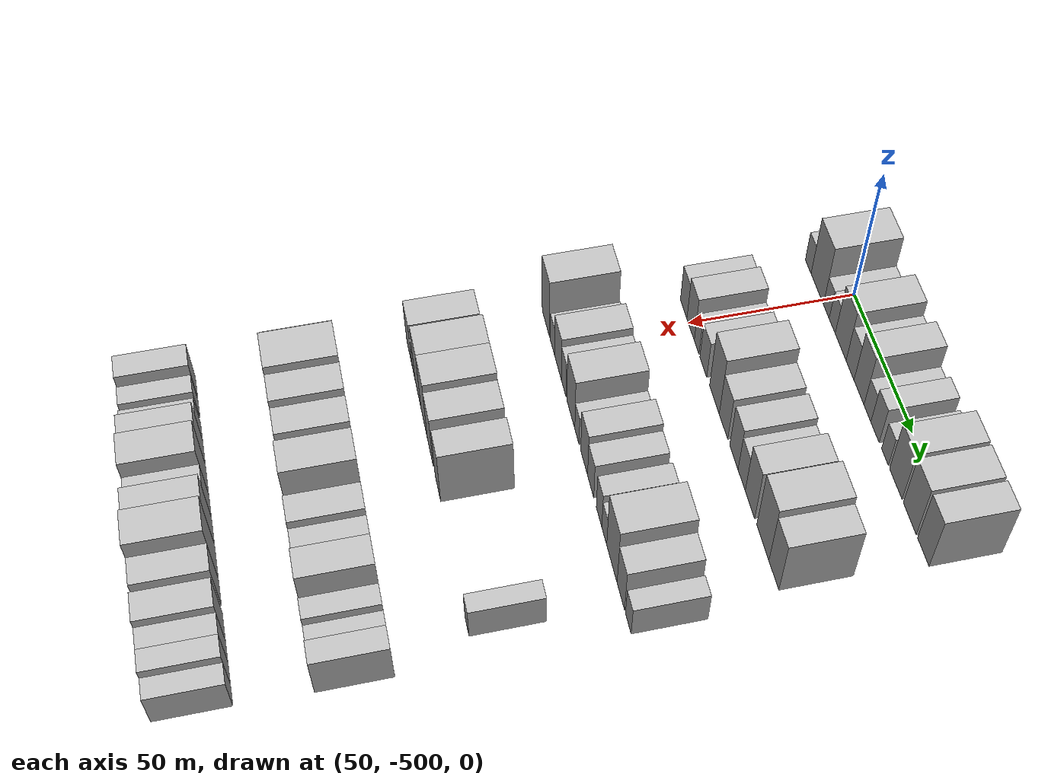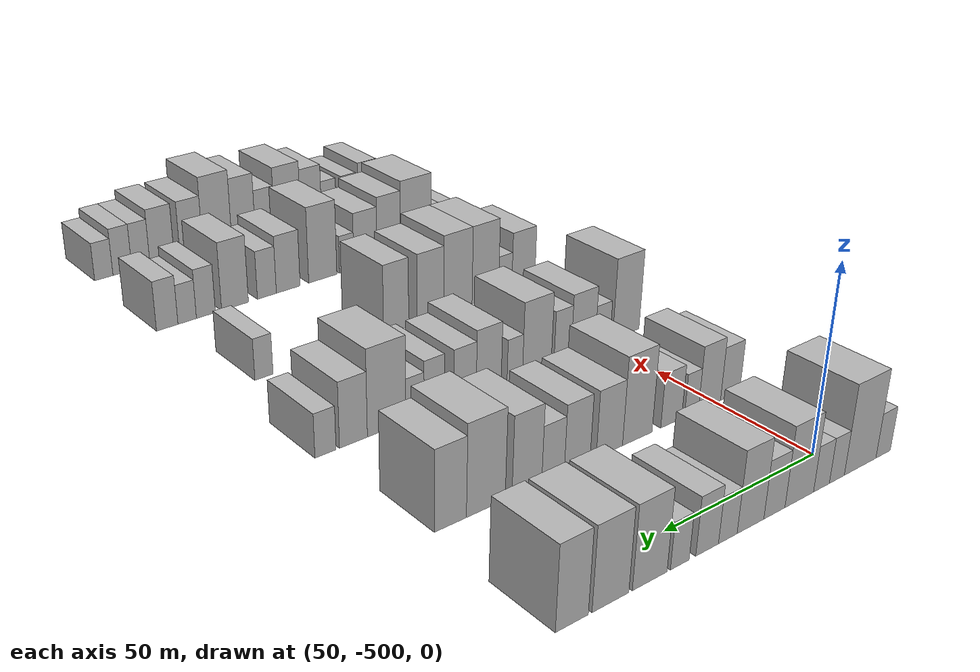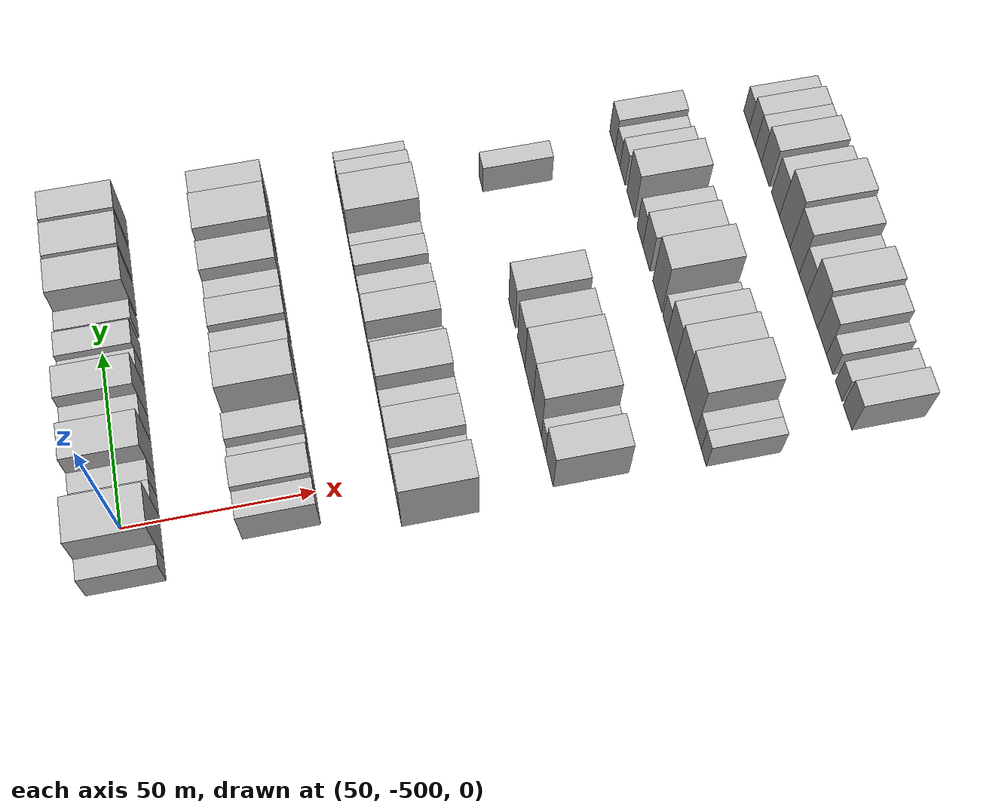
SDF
<sdf version="1.6">
 <world name="default">
  <model name="building_13">
   <static>1</static>
   <pose>50.0000 -513.2278 0 0.000000 0.000000 0.000000</pose>
   <link name="link">
    <pose>0 0 6.00 0 0 0</pose>
    <collision name="collision"><geometry><box><size>20.0000 5.5243 12.0000</size></box></geometry></collision>
    <visual name="visual">
     <cast_shadows>0</cast_shadows>
     <geometry><box><size>20.0000 5.5243 12.0000</size></box></geometry>
     <material>
      <script>
       <uri>model://HANNAS_wall/materials/scripts</uri>
       <uri>model://HANNAS_wall/materials/textures</uri>
       <name>vrc/HANNAS_wall</name>
      </script>
     </material>
    </visual>
   </link>
  </model>
  <model name="building_14">
   <static>1</static>
   <pose>50.0000 -504.5600 0 0.000000 0.000000 0.000000</pose>
   <link name="link">
    <pose>0 0 12.00 0 0 0</pose>
    <collision name="collision"><geometry><box><size>20.0000 11.8112 24.0000</size></box></geometry></collision>
    <visual name="visual">
     <cast_shadows>0</cast_shadows>
     <geometry><box><size>20.0000 11.8112 24.0000</size></box></geometry>
     <material>
      <script>
       <uri>model://HANNAS_wall/materials/scripts</uri>
       <uri>model://HANNAS_wall/materials/textures</uri>
       <name>vrc/HANNAS_wall</name>
      </script>
     </material>
    </visual>
   </link>
  </model>
  <model name="building_15">
   <static>1</static>
   <pose>50.0000 -495.9596 0 0.000000 0.000000 0.000000</pose>
   <link name="link">
    <pose>0 0 6.00 0 0 0</pose>
    <collision name="collision"><geometry><box><size>20.0000 5.3896 12.0000</size></box></geometry></collision>
    <visual name="visual">
     <cast_shadows>0</cast_shadows>
     <geometry><box><size>20.0000 5.3896 12.0000</size></box></geometry>
     <material>
      <script>
       <uri>model://HANNAS_wall/materials/scripts</uri>
       <uri>model://HANNAS_wall/materials/textures</uri>
       <name>vrc/HANNAS_wall</name>
      </script>
     </material>
    </visual>
   </link>
  </model>
  <model name="building_16">
   <static>1</static>
   <pose>50.0000 -490.4501 0 0.000000 0.000000 0.000000</pose>
   <link name="link">
    <pose>0 0 6.00 0 0 0</pose>
    <collision name="collision"><geometry><box><size>20.0000 5.6296 12.0000</size></box></geometry></collision>
    <visual name="visual">
     <cast_shadows>0</cast_shadows>
     <geometry><box><size>20.0000 5.6296 12.0000</size></box></geometry>
     <material>
      <script>
       <uri>model://HANNAS_wall/materials/scripts</uri>
       <uri>model://HANNAS_wall/materials/textures</uri>
       <name>vrc/HANNAS_wall</name>
      </script>
     </material>
    </visual>
   </link>
  </model>
  <model name="building_17">
   <static>1</static>
   <pose>50.0000 -482.6837 0 0.000000 0.000000 0.000000</pose>
   <link name="link">
    <pose>0 0 10.50 0 0 0</pose>
    <collision name="collision"><geometry><box><size>20.0000 9.9032 21.0000</size></box></geometry></collision>
    <visual name="visual">
     <cast_shadows>0</cast_shadows>
     <geometry><box><size>20.0000 9.9032 21.0000</size></box></geometry>
     <material>
      <script>
       <uri>model://HANNAS_wall/materials/scripts</uri>
       <uri>model://HANNAS_wall/materials/textures</uri>
       <name>vrc/HANNAS_wall</name>
      </script>
     </material>
    </visual>
   </link>
  </model>
  <model name="building_18">
   <static>1</static>
   <pose>50.0000 -474.1936 0 0.000000 0.000000 0.000000</pose>
   <link name="link">
    <pose>0 0 7.50 0 0 0</pose>
    <collision name="collision"><geometry><box><size>20.0000 7.0768 15.0000</size></box></geometry></collision>
    <visual name="visual">
     <cast_shadows>0</cast_shadows>
     <geometry><box><size>20.0000 7.0768 15.0000</size></box></geometry>
     <material>
      <script>
       <uri>model://HANNAS_wall/materials/scripts</uri>
       <uri>model://HANNAS_wall/materials/textures</uri>
       <name>vrc/HANNAS_wall</name>
      </script>
     </material>
    </visual>
   </link>
  </model>
  <model name="building_19">
   <static>1</static>
   <pose>50.0000 -466.2955 0 0.000000 0.000000 0.000000</pose>
   <link name="link">
    <pose>0 0 10.50 0 0 0</pose>
    <collision name="collision"><geometry><box><size>20.0000 8.7194 21.0000</size></box></geometry></collision>
    <visual name="visual">
     <cast_shadows>0</cast_shadows>
     <geometry><box><size>20.0000 8.7194 21.0000</size></box></geometry>
     <material>
      <script>
       <uri>model://HANNAS_wall/materials/scripts</uri>
       <uri>model://HANNAS_wall/materials/textures</uri>
       <name>vrc/HANNAS_wall</name>
      </script>
     </material>
    </visual>
   </link>
  </model>
  <model name="building_20">
   <static>1</static>
   <pose>50.0000 -458.9874 0 0.000000 0.000000 0.000000</pose>
   <link name="link">
    <pose>0 0 6.00 0 0 0</pose>
    <collision name="collision"><geometry><box><size>20.0000 5.8968 12.0000</size></box></geometry></collision>
    <visual name="visual">
     <cast_shadows>0</cast_shadows>
     <geometry><box><size>20.0000 5.8968 12.0000</size></box></geometry>
     <material>
      <script>
       <uri>model://HANNAS_wall/materials/scripts</uri>
       <uri>model://HANNAS_wall/materials/textures</uri>
       <name>vrc/HANNAS_wall</name>
      </script>
     </material>
    </visual>
   </link>
  </model>
  <model name="building_21">
   <static>1</static>
   <pose>50.0000 -452.5139 0 0.000000 0.000000 0.000000</pose>
   <link name="link">
    <pose>0 0 7.50 0 0 0</pose>
    <collision name="collision"><geometry><box><size>20.0000 7.0502 15.0000</size></box></geometry></collision>
    <visual name="visual">
     <cast_shadows>0</cast_shadows>
     <geometry><box><size>20.0000 7.0502 15.0000</size></box></geometry>
     <material>
      <script>
       <uri>model://HANNAS_wall/materials/scripts</uri>
       <uri>model://HANNAS_wall/materials/textures</uri>
       <name>vrc/HANNAS_wall</name>
      </script>
     </material>
    </visual>
   </link>
  </model>
  <model name="building_22">
   <static>1</static>
   <pose>50.0000 -444.1705 0 0.000000 0.000000 0.000000</pose>
   <link name="link">
    <pose>0 0 6.00 0 0 0</pose>
    <collision name="collision"><geometry><box><size>20.0000 5.6367 12.0000</size></box></geometry></collision>
    <visual name="visual">
     <cast_shadows>0</cast_shadows>
     <geometry><box><size>20.0000 5.6367 12.0000</size></box></geometry>
     <material>
      <script>
       <uri>model://HANNAS_wall/materials/scripts</uri>
       <uri>model://HANNAS_wall/materials/textures</uri>
       <name>vrc/HANNAS_wall</name>
      </script>
     </material>
    </visual>
   </link>
  </model>
  <model name="building_23">
   <static>1</static>
   <pose>50.0000 -435.3232 0 0.000000 0.000000 0.000000</pose>
   <link name="link">
    <pose>0 0 10.50 0 0 0</pose>
    <collision name="collision"><geometry><box><size>20.0000 10.0579 21.0000</size></box></geometry></collision>
    <visual name="visual">
     <cast_shadows>0</cast_shadows>
     <geometry><box><size>20.0000 10.0579 21.0000</size></box></geometry>
     <material>
      <script>
       <uri>model://HANNAS_wall/materials/scripts</uri>
       <uri>model://HANNAS_wall/materials/textures</uri>
       <name>vrc/HANNAS_wall</name>
      </script>
     </material>
    </visual>
   </link>
  </model>
  <model name="building_24">
   <static>1</static>
   <pose>50.0000 -424.1865 0 0.000000 0.000000 0.000000</pose>
   <link name="link">
    <pose>0 0 10.50 0 0 0</pose>
    <collision name="collision"><geometry><box><size>20.0000 10.2155 21.0000</size></box></geometry></collision>
    <visual name="visual">
     <cast_shadows>0</cast_shadows>
     <geometry><box><size>20.0000 10.2155 21.0000</size></box></geometry>
     <material>
      <script>
       <uri>model://HANNAS_wall/materials/scripts</uri>
       <uri>model://HANNAS_wall/materials/textures</uri>
       <name>vrc/HANNAS_wall</name>
      </script>
     </material>
    </visual>
   </link>
  </model>
  <model name="building_25">
   <static>1</static>
   <pose>50.0000 -413.6816 0 0.000000 0.000000 0.000000</pose>
   <link name="link">
    <pose>0 0 10.50 0 0 0</pose>
    <collision name="collision"><geometry><box><size>20.0000 8.7943 21.0000</size></box></geometry></collision>
    <visual name="visual">
     <cast_shadows>0</cast_shadows>
     <geometry><box><size>20.0000 8.7943 21.0000</size></box></geometry>
     <material>
      <script>
       <uri>model://HANNAS_wall/materials/scripts</uri>
       <uri>model://HANNAS_wall/materials/textures</uri>
       <name>vrc/HANNAS_wall</name>
      </script>
     </material>
    </visual>
   </link>
  </model>
  <model name="building_150">
   <static>1</static>
   <pose>90.0000 -505.3844 0 0.000000 0.000000 0.000000</pose>
   <link name="link">
    <pose>0 0 7.50 0 0 0</pose>
    <collision name="collision"><geometry><box><size>20.0000 7.2040 15.0000</size></box></geometry></collision>
    <visual name="visual">
     <cast_shadows>0</cast_shadows>
     <geometry><box><size>20.0000 7.2040 15.0000</size></box></geometry>
     <material>
      <script>
       <uri>model://HANNAS_wall/materials/scripts</uri>
       <uri>model://HANNAS_wall/materials/textures</uri>
       <name>vrc/HANNAS_wall</name>
      </script>
     </material>
    </visual>
   </link>
  </model>
  <model name="building_151">
   <static>1</static>
   <pose>90.0000 -497.7196 0 0.000000 0.000000 0.000000</pose>
   <link name="link">
    <pose>0 0 9.00 0 0 0</pose>
    <collision name="collision"><geometry><box><size>20.0000 8.1256 18.0000</size></box></geometry></collision>
    <visual name="visual">
     <cast_shadows>0</cast_shadows>
     <geometry><box><size>20.0000 8.1256 18.0000</size></box></geometry>
     <material>
      <script>
       <uri>model://HANNAS_wall/materials/scripts</uri>
       <uri>model://HANNAS_wall/materials/textures</uri>
       <name>vrc/HANNAS_wall</name>
      </script>
     </material>
    </visual>
   </link>
  </model>
  <model name="building_152">
   <static>1</static>
   <pose>90.0000 -491.1501 0 0.000000 0.000000 0.000000</pose>
   <link name="link">
    <pose>0 0 6.00 0 0 0</pose>
    <collision name="collision"><geometry><box><size>20.0000 5.0134 12.0000</size></box></geometry></collision>
    <visual name="visual">
     <cast_shadows>0</cast_shadows>
     <geometry><box><size>20.0000 5.0134 12.0000</size></box></geometry>
     <material>
      <script>
       <uri>model://HANNAS_wall/materials/scripts</uri>
       <uri>model://HANNAS_wall/materials/textures</uri>
       <name>vrc/HANNAS_wall</name>
      </script>
     </material>
    </visual>
   </link>
  </model>
  <model name="building_153">
   <static>1</static>
   <pose>90.0000 -483.9865 0 0.000000 0.000000 0.000000</pose>
   <link name="link">
    <pose>0 0 7.50 0 0 0</pose>
    <collision name="collision"><geometry><box><size>20.0000 7.3137 15.0000</size></box></geometry></collision>
    <visual name="visual">
     <cast_shadows>0</cast_shadows>
     <geometry><box><size>20.0000 7.3137 15.0000</size></box></geometry>
     <material>
      <script>
       <uri>model://HANNAS_wall/materials/scripts</uri>
       <uri>model://HANNAS_wall/materials/textures</uri>
       <name>vrc/HANNAS_wall</name>
      </script>
     </material>
    </visual>
   </link>
  </model>
  <model name="building_154">
   <static>1</static>
   <pose>90.0000 -472.3414 0 0.000000 0.000000 0.000000</pose>
   <link name="link">
    <pose>0 0 12.00 0 0 0</pose>
    <collision name="collision"><geometry><box><size>20.0000 9.9765 24.0000</size></box></geometry></collision>
    <visual name="visual">
     <cast_shadows>0</cast_shadows>
     <geometry><box><size>20.0000 9.9765 24.0000</size></box></geometry>
     <material>
      <script>
       <uri>model://HANNAS_wall/materials/scripts</uri>
       <uri>model://HANNAS_wall/materials/textures</uri>
       <name>vrc/HANNAS_wall</name>
      </script>
     </material>
    </visual>
   </link>
  </model>
  <model name="building_155">
   <static>1</static>
   <pose>90.0000 -463.0488 0 0.000000 0.000000 0.000000</pose>
   <link name="link">
    <pose>0 0 9.00 0 0 0</pose>
    <collision name="collision"><geometry><box><size>20.0000 8.6087 18.0000</size></box></geometry></collision>
    <visual name="visual">
     <cast_shadows>0</cast_shadows>
     <geometry><box><size>20.0000 8.6087 18.0000</size></box></geometry>
     <material>
      <script>
       <uri>model://HANNAS_wall/materials/scripts</uri>
       <uri>model://HANNAS_wall/materials/textures</uri>
       <name>vrc/HANNAS_wall</name>
      </script>
     </material>
    </visual>
   </link>
  </model>
  <model name="building_156">
   <static>1</static>
   <pose>90.0000 -452.6677 0 0.000000 0.000000 0.000000</pose>
   <link name="link">
    <pose>0 0 9.00 0 0 0</pose>
    <collision name="collision"><geometry><box><size>20.0000 8.1535 18.0000</size></box></geometry></collision>
    <visual name="visual">
     <cast_shadows>0</cast_shadows>
     <geometry><box><size>20.0000 8.1535 18.0000</size></box></geometry>
     <material>
      <script>
       <uri>model://HANNAS_wall/materials/scripts</uri>
       <uri>model://HANNAS_wall/materials/textures</uri>
       <name>vrc/HANNAS_wall</name>
      </script>
     </material>
    </visual>
   </link>
  </model>
  <model name="building_157">
   <static>1</static>
   <pose>90.0000 -445.1235 0 0.000000 0.000000 0.000000</pose>
   <link name="link">
    <pose>0 0 7.50 0 0 0</pose>
    <collision name="collision"><geometry><box><size>20.0000 6.9349 15.0000</size></box></geometry></collision>
    <visual name="visual">
     <cast_shadows>0</cast_shadows>
     <geometry><box><size>20.0000 6.9349 15.0000</size></box></geometry>
     <material>
      <script>
       <uri>model://HANNAS_wall/materials/scripts</uri>
       <uri>model://HANNAS_wall/materials/textures</uri>
       <name>vrc/HANNAS_wall</name>
      </script>
     </material>
    </visual>
   </link>
  </model>
  <model name="building_158">
   <static>1</static>
   <pose>90.0000 -437.2069 0 0.000000 0.000000 0.000000</pose>
   <link name="link">
    <pose>0 0 10.50 0 0 0</pose>
    <collision name="collision"><geometry><box><size>20.0000 8.8983 21.0000</size></box></geometry></collision>
    <visual name="visual">
     <cast_shadows>0</cast_shadows>
     <geometry><box><size>20.0000 8.8983 21.0000</size></box></geometry>
     <material>
      <script>
       <uri>model://HANNAS_wall/materials/scripts</uri>
       <uri>model://HANNAS_wall/materials/textures</uri>
       <name>vrc/HANNAS_wall</name>
      </script>
     </material>
    </visual>
   </link>
  </model>
  <model name="building_159">
   <static>1</static>
   <pose>90.0000 -425.1929 0 0.000000 0.000000 0.000000</pose>
   <link name="link">
    <pose>0 0 12.00 0 0 0</pose>
    <collision name="collision"><geometry><box><size>20.0000 11.1297 24.0000</size></box></geometry></collision>
    <visual name="visual">
     <cast_shadows>0</cast_shadows>
     <geometry><box><size>20.0000 11.1297 24.0000</size></box></geometry>
     <material>
      <script>
       <uri>model://HANNAS_wall/materials/scripts</uri>
       <uri>model://HANNAS_wall/materials/textures</uri>
       <name>vrc/HANNAS_wall</name>
      </script>
     </material>
    </visual>
   </link>
  </model>
  <model name="building_160">
   <static>1</static>
   <pose>90.0000 -415.1895 0 0.000000 0.000000 0.000000</pose>
   <link name="link">
    <pose>0 0 10.50 0 0 0</pose>
    <collision name="collision"><geometry><box><size>20.0000 8.8772 21.0000</size></box></geometry></collision>
    <visual name="visual">
     <cast_shadows>0</cast_shadows>
     <geometry><box><size>20.0000 8.8772 21.0000</size></box></geometry>
     <material>
      <script>
       <uri>model://HANNAS_wall/materials/scripts</uri>
       <uri>model://HANNAS_wall/materials/textures</uri>
       <name>vrc/HANNAS_wall</name>
      </script>
     </material>
    </visual>
   </link>
  </model>
  <model name="building_287">
   <static>1</static>
   <pose>130.0000 -508.4942 0 0.000000 0.000000 0.000000</pose>
   <link name="link">
    <pose>0 0 12.00 0 0 0</pose>
    <collision name="collision"><geometry><box><size>20.0000 10.1206 24.0000</size></box></geometry></collision>
    <visual name="visual">
     <cast_shadows>0</cast_shadows>
     <geometry><box><size>20.0000 10.1206 24.0000</size></box></geometry>
     <material>
      <script>
       <uri>model://HANNAS_wall/materials/scripts</uri>
       <uri>model://HANNAS_wall/materials/textures</uri>
       <name>vrc/HANNAS_wall</name>
      </script>
     </material>
    </visual>
   </link>
  </model>
  <model name="building_288">
   <static>1</static>
   <pose>130.0000 -499.6360 0 0.000000 0.000000 0.000000</pose>
   <link name="link">
    <pose>0 0 6.00 0 0 0</pose>
    <collision name="collision"><geometry><box><size>20.0000 5.5957 12.0000</size></box></geometry></collision>
    <visual name="visual">
     <cast_shadows>0</cast_shadows>
     <geometry><box><size>20.0000 5.5957 12.0000</size></box></geometry>
     <material>
      <script>
       <uri>model://HANNAS_wall/materials/scripts</uri>
       <uri>model://HANNAS_wall/materials/textures</uri>
       <name>vrc/HANNAS_wall</name>
      </script>
     </material>
    </visual>
   </link>
  </model>
  <model name="building_289">
   <static>1</static>
   <pose>130.0000 -492.4236 0 0.000000 0.000000 0.000000</pose>
   <link name="link">
    <pose>0 0 9.00 0 0 0</pose>
    <collision name="collision"><geometry><box><size>20.0000 8.8290 18.0000</size></box></geometry></collision>
    <visual name="visual">
     <cast_shadows>0</cast_shadows>
     <geometry><box><size>20.0000 8.8290 18.0000</size></box></geometry>
     <material>
      <script>
       <uri>model://HANNAS_wall/materials/scripts</uri>
       <uri>model://HANNAS_wall/materials/textures</uri>
       <name>vrc/HANNAS_wall</name>
      </script>
     </material>
    </visual>
   </link>
  </model>
  <model name="building_290">
   <static>1</static>
   <pose>130.0000 -484.9520 0 0.000000 0.000000 0.000000</pose>
   <link name="link">
    <pose>0 0 7.50 0 0 0</pose>
    <collision name="collision"><geometry><box><size>20.0000 6.1143 15.0000</size></box></geometry></collision>
    <visual name="visual">
     <cast_shadows>0</cast_shadows>
     <geometry><box><size>20.0000 6.1143 15.0000</size></box></geometry>
     <material>
      <script>
       <uri>model://HANNAS_wall/materials/scripts</uri>
       <uri>model://HANNAS_wall/materials/textures</uri>
       <name>vrc/HANNAS_wall</name>
      </script>
     </material>
    </visual>
   </link>
  </model>
  <model name="building_291">
   <static>1</static>
   <pose>130.0000 -475.8835 0 0.000000 0.000000 0.000000</pose>
   <link name="link">
    <pose>0 0 10.50 0 0 0</pose>
    <collision name="collision"><geometry><box><size>20.0000 10.0227 21.0000</size></box></geometry></collision>
    <visual name="visual">
     <cast_shadows>0</cast_shadows>
     <geometry><box><size>20.0000 10.0227 21.0000</size></box></geometry>
     <material>
      <script>
       <uri>model://HANNAS_wall/materials/scripts</uri>
       <uri>model://HANNAS_wall/materials/textures</uri>
       <name>vrc/HANNAS_wall</name>
      </script>
     </material>
    </visual>
   </link>
  </model>
  <model name="building_292">
   <static>1</static>
   <pose>130.0000 -468.2421 0 0.000000 0.000000 0.000000</pose>
   <link name="link">
    <pose>0 0 6.00 0 0 0</pose>
    <collision name="collision"><geometry><box><size>20.0000 5.2601 12.0000</size></box></geometry></collision>
    <visual name="visual">
     <cast_shadows>0</cast_shadows>
     <geometry><box><size>20.0000 5.2601 12.0000</size></box></geometry>
     <material>
      <script>
       <uri>model://HANNAS_wall/materials/scripts</uri>
       <uri>model://HANNAS_wall/materials/textures</uri>
       <name>vrc/HANNAS_wall</name>
      </script>
     </material>
    </visual>
   </link>
  </model>
  <model name="building_293">
   <static>1</static>
   <pose>130.0000 -459.4670 0 0.000000 0.000000 0.000000</pose>
   <link name="link">
    <pose>0 0 9.00 0 0 0</pose>
    <collision name="collision"><geometry><box><size>20.0000 8.2902 18.0000</size></box></geometry></collision>
    <visual name="visual">
     <cast_shadows>0</cast_shadows>
     <geometry><box><size>20.0000 8.2902 18.0000</size></box></geometry>
     <material>
      <script>
       <uri>model://HANNAS_wall/materials/scripts</uri>
       <uri>model://HANNAS_wall/materials/textures</uri>
       <name>vrc/HANNAS_wall</name>
      </script>
     </material>
    </visual>
   </link>
  </model>
  <model name="building_294">
   <static>1</static>
   <pose>130.0000 -451.6708 0 0.000000 0.000000 0.000000</pose>
   <link name="link">
    <pose>0 0 7.50 0 0 0</pose>
    <collision name="collision"><geometry><box><size>20.0000 7.3021 15.0000</size></box></geometry></collision>
    <visual name="visual">
     <cast_shadows>0</cast_shadows>
     <geometry><box><size>20.0000 7.3021 15.0000</size></box></geometry>
     <material>
      <script>
       <uri>model://HANNAS_wall/materials/scripts</uri>
       <uri>model://HANNAS_wall/materials/textures</uri>
       <name>vrc/HANNAS_wall</name>
      </script>
     </material>
    </visual>
   </link>
  </model>
  <model name="building_295">
   <static>1</static>
   <pose>130.0000 -441.8554 0 0.000000 0.000000 0.000000</pose>
   <link name="link">
    <pose>0 0 7.50 0 0 0</pose>
    <collision name="collision"><geometry><box><size>20.0000 6.3288 15.0000</size></box></geometry></collision>
    <visual name="visual">
     <cast_shadows>0</cast_shadows>
     <geometry><box><size>20.0000 6.3288 15.0000</size></box></geometry>
     <material>
      <script>
       <uri>model://HANNAS_wall/materials/scripts</uri>
       <uri>model://HANNAS_wall/materials/textures</uri>
       <name>vrc/HANNAS_wall</name>
      </script>
     </material>
    </visual>
   </link>
  </model>
  <model name="building_296">
   <static>1</static>
   <pose>130.0000 -435.8816 0 0.000000 0.000000 0.000000</pose>
   <link name="link">
    <pose>0 0 6.00 0 0 0</pose>
    <collision name="collision"><geometry><box><size>20.0000 5.6188 12.0000</size></box></geometry></collision>
    <visual name="visual">
     <cast_shadows>0</cast_shadows>
     <geometry><box><size>20.0000 5.6188 12.0000</size></box></geometry>
     <material>
      <script>
       <uri>model://HANNAS_wall/materials/scripts</uri>
       <uri>model://HANNAS_wall/materials/textures</uri>
       <name>vrc/HANNAS_wall</name>
      </script>
     </material>
    </visual>
   </link>
  </model>
  <model name="building_297">
   <static>1</static>
   <pose>130.0000 -427.3172 0 0.000000 0.000000 0.000000</pose>
   <link name="link">
    <pose>0 0 12.00 0 0 0</pose>
    <collision name="collision"><geometry><box><size>20.0000 11.5099 24.0000</size></box></geometry></collision>
    <visual name="visual">
     <cast_shadows>0</cast_shadows>
     <geometry><box><size>20.0000 11.5099 24.0000</size></box></geometry>
     <material>
      <script>
       <uri>model://HANNAS_wall/materials/scripts</uri>
       <uri>model://HANNAS_wall/materials/textures</uri>
       <name>vrc/HANNAS_wall</name>
      </script>
     </material>
    </visual>
   </link>
  </model>
  <model name="building_298">
   <static>1</static>
   <pose>130.0000 -417.5141 0 0.000000 0.000000 0.000000</pose>
   <link name="link">
    <pose>0 0 9.00 0 0 0</pose>
    <collision name="collision"><geometry><box><size>20.0000 8.0964 18.0000</size></box></geometry></collision>
    <visual name="visual">
     <cast_shadows>0</cast_shadows>
     <geometry><box><size>20.0000 8.0964 18.0000</size></box></geometry>
     <material>
      <script>
       <uri>model://HANNAS_wall/materials/scripts</uri>
       <uri>model://HANNAS_wall/materials/textures</uri>
       <name>vrc/HANNAS_wall</name>
      </script>
     </material>
    </visual>
   </link>
  </model>
  <model name="building_299">
   <static>1</static>
   <pose>130.0000 -409.4875 0 0.000000 0.000000 0.000000</pose>
   <link name="link">
    <pose>0 0 6.00 0 0 0</pose>
    <collision name="collision"><geometry><box><size>20.0000 5.9567 12.0000</size></box></geometry></collision>
    <visual name="visual">
     <cast_shadows>0</cast_shadows>
     <geometry><box><size>20.0000 5.9567 12.0000</size></box></geometry>
     <material>
      <script>
       <uri>model://HANNAS_wall/materials/scripts</uri>
       <uri>model://HANNAS_wall/materials/textures</uri>
       <name>vrc/HANNAS_wall</name>
      </script>
     </material>
    </visual>
   </link>
  </model>
  <model name="building_427">
   <static>1</static>
   <pose>170.0000 -506.2107 0 0.000000 0.000000 0.000000</pose>
   <link name="link">
    <pose>0 0 9.00 0 0 0</pose>
    <collision name="collision"><geometry><box><size>20.0000 8.9620 18.0000</size></box></geometry></collision>
    <visual name="visual">
     <cast_shadows>0</cast_shadows>
     <geometry><box><size>20.0000 8.9620 18.0000</size></box></geometry>
     <material>
      <script>
       <uri>model://HANNAS_wall/materials/scripts</uri>
       <uri>model://HANNAS_wall/materials/textures</uri>
       <name>vrc/HANNAS_wall</name>
      </script>
     </material>
    </visual>
   </link>
  </model>
  <model name="building_428">
   <static>1</static>
   <pose>170.0000 -499.1808 0 0.000000 0.000000 0.000000</pose>
   <link name="link">
    <pose>0 0 6.00 0 0 0</pose>
    <collision name="collision"><geometry><box><size>20.0000 5.0978 12.0000</size></box></geometry></collision>
    <visual name="visual">
     <cast_shadows>0</cast_shadows>
     <geometry><box><size>20.0000 5.0978 12.0000</size></box></geometry>
     <material>
      <script>
       <uri>model://HANNAS_wall/materials/scripts</uri>
       <uri>model://HANNAS_wall/materials/textures</uri>
       <name>vrc/HANNAS_wall</name>
      </script>
     </material>
    </visual>
   </link>
  </model>
  <model name="building_429">
   <static>1</static>
   <pose>170.0000 -491.6853 0 0.000000 0.000000 0.000000</pose>
   <link name="link">
    <pose>0 0 12.00 0 0 0</pose>
    <collision name="collision"><geometry><box><size>20.0000 9.8931 24.0000</size></box></geometry></collision>
    <visual name="visual">
     <cast_shadows>0</cast_shadows>
     <geometry><box><size>20.0000 9.8931 24.0000</size></box></geometry>
     <material>
      <script>
       <uri>model://HANNAS_wall/materials/scripts</uri>
       <uri>model://HANNAS_wall/materials/textures</uri>
       <name>vrc/HANNAS_wall</name>
      </script>
     </material>
    </visual>
   </link>
  </model>
  <model name="building_430">
   <static>1</static>
   <pose>170.0000 -481.5598 0 0.000000 0.000000 0.000000</pose>
   <link name="link">
    <pose>0 0 12.00 0 0 0</pose>
    <collision name="collision"><geometry><box><size>20.0000 10.3578 24.0000</size></box></geometry></collision>
    <visual name="visual">
     <cast_shadows>0</cast_shadows>
     <geometry><box><size>20.0000 10.3578 24.0000</size></box></geometry>
     <material>
      <script>
       <uri>model://HANNAS_wall/materials/scripts</uri>
       <uri>model://HANNAS_wall/materials/textures</uri>
       <name>vrc/HANNAS_wall</name>
      </script>
     </material>
    </visual>
   </link>
  </model>
  <model name="building_431">
   <static>1</static>
   <pose>170.0000 -471.7133 0 0.000000 0.000000 0.000000</pose>
   <link name="link">
    <pose>0 0 10.50 0 0 0</pose>
    <collision name="collision"><geometry><box><size>20.0000 9.3354 21.0000</size></box></geometry></collision>
    <visual name="visual">
     <cast_shadows>0</cast_shadows>
     <geometry><box><size>20.0000 9.3354 21.0000</size></box></geometry>
     <material>
      <script>
       <uri>model://HANNAS_wall/materials/scripts</uri>
       <uri>model://HANNAS_wall/materials/textures</uri>
       <name>vrc/HANNAS_wall</name>
      </script>
     </material>
    </visual>
   </link>
  </model>
  <model name="building_432">
   <static>1</static>
   <pose>170.0000 -459.7420 0 0.000000 0.000000 0.000000</pose>
   <link name="link">
    <pose>0 0 10.50 0 0 0</pose>
    <collision name="collision"><geometry><box><size>20.0000 8.6072 21.0000</size></box></geometry></collision>
    <visual name="visual">
     <cast_shadows>0</cast_shadows>
     <geometry><box><size>20.0000 8.6072 21.0000</size></box></geometry>
     <material>
      <script>
       <uri>model://HANNAS_wall/materials/scripts</uri>
       <uri>model://HANNAS_wall/materials/textures</uri>
       <name>vrc/HANNAS_wall</name>
      </script>
     </material>
    </visual>
   </link>
  </model>
  <model name="building_433">
   <static>1</static>
   <pose>170.0000 -417.2178 0 0.000000 0.000000 0.000000</pose>
   <link name="link">
    <pose>0 0 6.00 0 0 0</pose>
    <collision name="collision"><geometry><box><size>20.0000 5.4804 12.0000</size></box></geometry></collision>
    <visual name="visual">
     <cast_shadows>0</cast_shadows>
     <geometry><box><size>20.0000 5.4804 12.0000</size></box></geometry>
     <material>
      <script>
       <uri>model://HANNAS_wall/materials/scripts</uri>
       <uri>model://HANNAS_wall/materials/textures</uri>
       <name>vrc/HANNAS_wall</name>
      </script>
     </material>
    </visual>
   </link>
  </model>
  <model name="building_559">
   <static>1</static>
   <pose>210.0000 -510.5091 0 0.000000 0.000000 0.000000</pose>
   <link name="link">
    <pose>0 0 6.00 0 0 0</pose>
    <collision name="collision"><geometry><box><size>20.0000 4.8704 12.0000</size></box></geometry></collision>
    <visual name="visual">
     <cast_shadows>0</cast_shadows>
     <geometry><box><size>20.0000 4.8704 12.0000</size></box></geometry>
     <material>
      <script>
       <uri>model://HANNAS_wall/materials/scripts</uri>
       <uri>model://HANNAS_wall/materials/textures</uri>
       <name>vrc/HANNAS_wall</name>
      </script>
     </material>
    </visual>
   </link>
  </model>
  <model name="building_560">
   <static>1</static>
   <pose>210.0000 -505.5305 0 0.000000 0.000000 0.000000</pose>
   <link name="link">
    <pose>0 0 6.00 0 0 0</pose>
    <collision name="collision"><geometry><box><size>20.0000 5.0868 12.0000</size></box></geometry></collision>
    <visual name="visual">
     <cast_shadows>0</cast_shadows>
     <geometry><box><size>20.0000 5.0868 12.0000</size></box></geometry>
     <material>
      <script>
       <uri>model://HANNAS_wall/materials/scripts</uri>
       <uri>model://HANNAS_wall/materials/textures</uri>
       <name>vrc/HANNAS_wall</name>
      </script>
     </material>
    </visual>
   </link>
  </model>
  <model name="building_561">
   <static>1</static>
   <pose>210.0000 -497.0159 0 0.000000 0.000000 0.000000</pose>
   <link name="link">
    <pose>0 0 12.00 0 0 0</pose>
    <collision name="collision"><geometry><box><size>20.0000 11.9425 24.0000</size></box></geometry></collision>
    <visual name="visual">
     <cast_shadows>0</cast_shadows>
     <geometry><box><size>20.0000 11.9425 24.0000</size></box></geometry>
     <material>
      <script>
       <uri>model://HANNAS_wall/materials/scripts</uri>
       <uri>model://HANNAS_wall/materials/textures</uri>
       <name>vrc/HANNAS_wall</name>
      </script>
     </material>
    </visual>
   </link>
  </model>
  <model name="building_562">
   <static>1</static>
   <pose>210.0000 -486.5847 0 0.000000 0.000000 0.000000</pose>
   <link name="link">
    <pose>0 0 10.50 0 0 0</pose>
    <collision name="collision"><geometry><box><size>20.0000 8.9199 21.0000</size></box></geometry></collision>
    <visual name="visual">
     <cast_shadows>0</cast_shadows>
     <geometry><box><size>20.0000 8.9199 21.0000</size></box></geometry>
     <material>
      <script>
       <uri>model://HANNAS_wall/materials/scripts</uri>
       <uri>model://HANNAS_wall/materials/textures</uri>
       <name>vrc/HANNAS_wall</name>
      </script>
     </material>
    </visual>
   </link>
  </model>
  <model name="building_563">
   <static>1</static>
   <pose>210.0000 -477.8071 0 0.000000 0.000000 0.000000</pose>
   <link name="link">
    <pose>0 0 9.00 0 0 0</pose>
    <collision name="collision"><geometry><box><size>20.0000 8.6353 18.0000</size></box></geometry></collision>
    <visual name="visual">
     <cast_shadows>0</cast_shadows>
     <geometry><box><size>20.0000 8.6353 18.0000</size></box></geometry>
     <material>
      <script>
       <uri>model://HANNAS_wall/materials/scripts</uri>
       <uri>model://HANNAS_wall/materials/textures</uri>
       <name>vrc/HANNAS_wall</name>
      </script>
     </material>
    </visual>
   </link>
  </model>
  <model name="building_564">
   <static>1</static>
   <pose>210.0000 -470.8797 0 0.000000 0.000000 0.000000</pose>
   <link name="link">
    <pose>0 0 6.00 0 0 0</pose>
    <collision name="collision"><geometry><box><size>20.0000 5.2193 12.0000</size></box></geometry></collision>
    <visual name="visual">
     <cast_shadows>0</cast_shadows>
     <geometry><box><size>20.0000 5.2193 12.0000</size></box></geometry>
     <material>
      <script>
       <uri>model://HANNAS_wall/materials/scripts</uri>
       <uri>model://HANNAS_wall/materials/textures</uri>
       <name>vrc/HANNAS_wall</name>
      </script>
     </material>
    </visual>
   </link>
  </model>
  <model name="building_565">
   <static>1</static>
   <pose>210.0000 -462.2491 0 0.000000 0.000000 0.000000</pose>
   <link name="link">
    <pose>0 0 12.00 0 0 0</pose>
    <collision name="collision"><geometry><box><size>20.0000 10.0420 24.0000</size></box></geometry></collision>
    <visual name="visual">
     <cast_shadows>0</cast_shadows>
     <geometry><box><size>20.0000 10.0420 24.0000</size></box></geometry>
     <material>
      <script>
       <uri>model://HANNAS_wall/materials/scripts</uri>
       <uri>model://HANNAS_wall/materials/textures</uri>
       <name>vrc/HANNAS_wall</name>
      </script>
     </material>
    </visual>
   </link>
  </model>
  <model name="building_566">
   <static>1</static>
   <pose>210.0000 -450.1192 0 0.000000 0.000000 0.000000</pose>
   <link name="link">
    <pose>0 0 9.00 0 0 0</pose>
    <collision name="collision"><geometry><box><size>20.0000 8.2177 18.0000</size></box></geometry></collision>
    <visual name="visual">
     <cast_shadows>0</cast_shadows>
     <geometry><box><size>20.0000 8.2177 18.0000</size></box></geometry>
     <material>
      <script>
       <uri>model://HANNAS_wall/materials/scripts</uri>
       <uri>model://HANNAS_wall/materials/textures</uri>
       <name>vrc/HANNAS_wall</name>
      </script>
     </material>
    </visual>
   </link>
  </model>
  <model name="building_567">
   <static>1</static>
   <pose>210.0000 -442.8084 0 0.000000 0.000000 0.000000</pose>
   <link name="link">
    <pose>0 0 7.50 0 0 0</pose>
    <collision name="collision"><geometry><box><size>20.0000 6.4037 15.0000</size></box></geometry></collision>
    <visual name="visual">
     <cast_shadows>0</cast_shadows>
     <geometry><box><size>20.0000 6.4037 15.0000</size></box></geometry>
     <material>
      <script>
       <uri>model://HANNAS_wall/materials/scripts</uri>
       <uri>model://HANNAS_wall/materials/textures</uri>
       <name>vrc/HANNAS_wall</name>
      </script>
     </material>
    </visual>
   </link>
  </model>
  <model name="building_568">
   <static>1</static>
   <pose>210.0000 -432.1925 0 0.000000 0.000000 0.000000</pose>
   <link name="link">
    <pose>0 0 10.50 0 0 0</pose>
    <collision name="collision"><geometry><box><size>20.0000 8.8282 21.0000</size></box></geometry></collision>
    <visual name="visual">
     <cast_shadows>0</cast_shadows>
     <geometry><box><size>20.0000 8.8282 21.0000</size></box></geometry>
     <material>
      <script>
       <uri>model://HANNAS_wall/materials/scripts</uri>
       <uri>model://HANNAS_wall/materials/textures</uri>
       <name>vrc/HANNAS_wall</name>
      </script>
     </material>
    </visual>
   </link>
  </model>
  <model name="building_569">
   <static>1</static>
   <pose>210.0000 -422.7387 0 0.000000 0.000000 0.000000</pose>
   <link name="link">
    <pose>0 0 7.50 0 0 0</pose>
    <collision name="collision"><geometry><box><size>20.0000 6.0794 15.0000</size></box></geometry></collision>
    <visual name="visual">
     <cast_shadows>0</cast_shadows>
     <geometry><box><size>20.0000 6.0794 15.0000</size></box></geometry>
     <material>
      <script>
       <uri>model://HANNAS_wall/materials/scripts</uri>
       <uri>model://HANNAS_wall/materials/textures</uri>
       <name>vrc/HANNAS_wall</name>
      </script>
     </material>
    </visual>
   </link>
  </model>
  <model name="building_570">
   <static>1</static>
   <pose>210.0000 -416.7964 0 0.000000 0.000000 0.000000</pose>
   <link name="link">
    <pose>0 0 6.00 0 0 0</pose>
    <collision name="collision"><geometry><box><size>20.0000 5.8051 12.0000</size></box></geometry></collision>
    <visual name="visual">
     <cast_shadows>0</cast_shadows>
     <geometry><box><size>20.0000 5.8051 12.0000</size></box></geometry>
     <material>
      <script>
       <uri>model://HANNAS_wall/materials/scripts</uri>
       <uri>model://HANNAS_wall/materials/textures</uri>
       <name>vrc/HANNAS_wall</name>
      </script>
     </material>
    </visual>
   </link>
  </model>
  <model name="building_571">
   <static>1</static>
   <pose>210.0000 -410.5685 0 0.000000 0.000000 0.000000</pose>
   <link name="link">
    <pose>0 0 7.50 0 0 0</pose>
    <collision name="collision"><geometry><box><size>20.0000 6.6507 15.0000</size></box></geometry></collision>
    <visual name="visual">
     <cast_shadows>0</cast_shadows>
     <geometry><box><size>20.0000 6.6507 15.0000</size></box></geometry>
     <material>
      <script>
       <uri>model://HANNAS_wall/materials/scripts</uri>
       <uri>model://HANNAS_wall/materials/textures</uri>
       <name>vrc/HANNAS_wall</name>
      </script>
     </material>
    </visual>
   </link>
  </model>
  <model name="building_700">
   <static>1</static>
   <pose>250.0000 -506.9430 0 0.000000 0.000000 0.000000</pose>
   <link name="link">
    <pose>0 0 7.50 0 0 0</pose>
    <collision name="collision"><geometry><box><size>20.0000 7.3778 15.0000</size></box></geometry></collision>
    <visual name="visual">
     <cast_shadows>0</cast_shadows>
     <geometry><box><size>20.0000 7.3778 15.0000</size></box></geometry>
     <material>
      <script>
       <uri>model://HANNAS_wall/materials/scripts</uri>
       <uri>model://HANNAS_wall/materials/textures</uri>
       <name>vrc/HANNAS_wall</name>
      </script>
     </material>
    </visual>
   </link>
  </model>
  <model name="building_701">
   <static>1</static>
   <pose>250.0000 -499.2731 0 0.000000 0.000000 0.000000</pose>
   <link name="link">
    <pose>0 0 6.00 0 0 0</pose>
    <collision name="collision"><geometry><box><size>20.0000 5.9620 12.0000</size></box></geometry></collision>
    <visual name="visual">
     <cast_shadows>0</cast_shadows>
     <geometry><box><size>20.0000 5.9620 12.0000</size></box></geometry>
     <material>
      <script>
       <uri>model://HANNAS_wall/materials/scripts</uri>
       <uri>model://HANNAS_wall/materials/textures</uri>
       <name>vrc/HANNAS_wall</name>
      </script>
     </material>
    </visual>
   </link>
  </model>
  <model name="building_702">
   <static>1</static>
   <pose>250.0000 -491.3770 0 0.000000 0.000000 0.000000</pose>
   <link name="link">
    <pose>0 0 6.00 0 0 0</pose>
    <collision name="collision"><geometry><box><size>20.0000 5.8303 12.0000</size></box></geometry></collision>
    <visual name="visual">
     <cast_shadows>0</cast_shadows>
     <geometry><box><size>20.0000 5.8303 12.0000</size></box></geometry>
     <material>
      <script>
       <uri>model://HANNAS_wall/materials/scripts</uri>
       <uri>model://HANNAS_wall/materials/textures</uri>
       <name>vrc/HANNAS_wall</name>
      </script>
     </material>
    </visual>
   </link>
  </model>
  <model name="building_703">
   <static>1</static>
   <pose>250.0000 -484.3919 0 0.000000 0.000000 0.000000</pose>
   <link name="link">
    <pose>0 0 9.00 0 0 0</pose>
    <collision name="collision"><geometry><box><size>20.0000 8.1400 18.0000</size></box></geometry></collision>
    <visual name="visual">
     <cast_shadows>0</cast_shadows>
     <geometry><box><size>20.0000 8.1400 18.0000</size></box></geometry>
     <material>
      <script>
       <uri>model://HANNAS_wall/materials/scripts</uri>
       <uri>model://HANNAS_wall/materials/textures</uri>
       <name>vrc/HANNAS_wall</name>
      </script>
     </material>
    </visual>
   </link>
  </model>
  <model name="building_704">
   <static>1</static>
   <pose>250.0000 -475.3703 0 0.000000 0.000000 0.000000</pose>
   <link name="link">
    <pose>0 0 10.50 0 0 0</pose>
    <collision name="collision"><geometry><box><size>20.0000 9.9031 21.0000</size></box></geometry></collision>
    <visual name="visual">
     <cast_shadows>0</cast_shadows>
     <geometry><box><size>20.0000 9.9031 21.0000</size></box></geometry>
     <material>
      <script>
       <uri>model://HANNAS_wall/materials/scripts</uri>
       <uri>model://HANNAS_wall/materials/textures</uri>
       <name>vrc/HANNAS_wall</name>
      </script>
     </material>
    </visual>
   </link>
  </model>
  <model name="building_705">
   <static>1</static>
   <pose>250.0000 -466.8263 0 0.000000 0.000000 0.000000</pose>
   <link name="link">
    <pose>0 0 7.50 0 0 0</pose>
    <collision name="collision"><geometry><box><size>20.0000 7.1849 15.0000</size></box></geometry></collision>
    <visual name="visual">
     <cast_shadows>0</cast_shadows>
     <geometry><box><size>20.0000 7.1849 15.0000</size></box></geometry>
     <material>
      <script>
       <uri>model://HANNAS_wall/materials/scripts</uri>
       <uri>model://HANNAS_wall/materials/textures</uri>
       <name>vrc/HANNAS_wall</name>
      </script>
     </material>
    </visual>
   </link>
  </model>
  <model name="building_706">
   <static>1</static>
   <pose>250.0000 -458.9222 0 0.000000 0.000000 0.000000</pose>
   <link name="link">
    <pose>0 0 10.50 0 0 0</pose>
    <collision name="collision"><geometry><box><size>20.0000 8.6234 21.0000</size></box></geometry></collision>
    <visual name="visual">
     <cast_shadows>0</cast_shadows>
     <geometry><box><size>20.0000 8.6234 21.0000</size></box></geometry>
     <material>
      <script>
       <uri>model://HANNAS_wall/materials/scripts</uri>
       <uri>model://HANNAS_wall/materials/textures</uri>
       <name>vrc/HANNAS_wall</name>
      </script>
     </material>
    </visual>
   </link>
  </model>
  <model name="building_707">
   <static>1</static>
   <pose>250.0000 -449.4354 0 0.000000 0.000000 0.000000</pose>
   <link name="link">
    <pose>0 0 12.00 0 0 0</pose>
    <collision name="collision"><geometry><box><size>20.0000 10.3502 24.0000</size></box></geometry></collision>
    <visual name="visual">
     <cast_shadows>0</cast_shadows>
     <geometry><box><size>20.0000 10.3502 24.0000</size></box></geometry>
     <material>
      <script>
       <uri>model://HANNAS_wall/materials/scripts</uri>
       <uri>model://HANNAS_wall/materials/textures</uri>
       <name>vrc/HANNAS_wall</name>
      </script>
     </material>
    </visual>
   </link>
  </model>
  <model name="building_708">
   <static>1</static>
   <pose>250.0000 -440.2749 0 0.000000 0.000000 0.000000</pose>
   <link name="link">
    <pose>0 0 9.00 0 0 0</pose>
    <collision name="collision"><geometry><box><size>20.0000 7.9707 18.0000</size></box></geometry></collision>
    <visual name="visual">
     <cast_shadows>0</cast_shadows>
     <geometry><box><size>20.0000 7.9707 18.0000</size></box></geometry>
     <material>
      <script>
       <uri>model://HANNAS_wall/materials/scripts</uri>
       <uri>model://HANNAS_wall/materials/textures</uri>
       <name>vrc/HANNAS_wall</name>
      </script>
     </material>
    </visual>
   </link>
  </model>
  <model name="building_709">
   <static>1</static>
   <pose>250.0000 -430.1683 0 0.000000 0.000000 0.000000</pose>
   <link name="link">
    <pose>0 0 9.00 0 0 0</pose>
    <collision name="collision"><geometry><box><size>20.0000 8.2425 18.0000</size></box></geometry></collision>
    <visual name="visual">
     <cast_shadows>0</cast_shadows>
     <geometry><box><size>20.0000 8.2425 18.0000</size></box></geometry>
     <material>
      <script>
       <uri>model://HANNAS_wall/materials/scripts</uri>
       <uri>model://HANNAS_wall/materials/textures</uri>
       <name>vrc/HANNAS_wall</name>
      </script>
     </material>
    </visual>
   </link>
  </model>
  <model name="building_710">
   <static>1</static>
   <pose>250.0000 -423.0356 0 0.000000 0.000000 0.000000</pose>
   <link name="link">
    <pose>0 0 7.50 0 0 0</pose>
    <collision name="collision"><geometry><box><size>20.0000 6.0229 15.0000</size></box></geometry></collision>
    <visual name="visual">
     <cast_shadows>0</cast_shadows>
     <geometry><box><size>20.0000 6.0229 15.0000</size></box></geometry>
     <material>
      <script>
       <uri>model://HANNAS_wall/materials/scripts</uri>
       <uri>model://HANNAS_wall/materials/textures</uri>
       <name>vrc/HANNAS_wall</name>
      </script>
     </material>
    </visual>
   </link>
  </model>
  <model name="building_711">
   <static>1</static>
   <pose>250.0000 -416.8999 0 0.000000 0.000000 0.000000</pose>
   <link name="link">
    <pose>0 0 7.50 0 0 0</pose>
    <collision name="collision"><geometry><box><size>20.0000 6.2486 15.0000</size></box></geometry></collision>
    <visual name="visual">
     <cast_shadows>0</cast_shadows>
     <geometry><box><size>20.0000 6.2486 15.0000</size></box></geometry>
     <material>
      <script>
       <uri>model://HANNAS_wall/materials/scripts</uri>
       <uri>model://HANNAS_wall/materials/textures</uri>
       <name>vrc/HANNAS_wall</name>
      </script>
     </material>
    </visual>
   </link>
  </model>
  <model name="building_712">
   <static>1</static>
   <pose>250.0000 -410.8098 0 0.000000 0.000000 0.000000</pose>
   <link name="link">
    <pose>0 0 6.00 0 0 0</pose>
    <collision name="collision"><geometry><box><size>20.0000 5.9314 12.0000</size></box></geometry></collision>
    <visual name="visual">
     <cast_shadows>0</cast_shadows>
     <geometry><box><size>20.0000 5.9314 12.0000</size></box></geometry>
     <material>
      <script>
       <uri>model://HANNAS_wall/materials/scripts</uri>
       <uri>model://HANNAS_wall/materials/textures</uri>
       <name>vrc/HANNAS_wall</name>
      </script>
     </material>
    </visual>
   </link>
  </model>
 </world>
</sdf>
